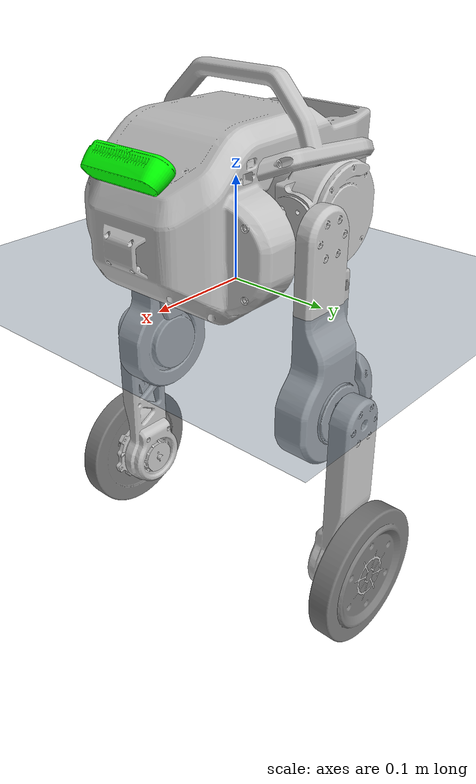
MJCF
<mujoco model="Pineapple scene">
  <include file="pineapple_v1.xml"/>

  <statistic center="0 0 0.1" extent="0.8"/>

  <visual>
    <headlight diffuse="0.6 0.6 0.6" ambient="0.3 0.3 0.3" specular="0 0 0"/>
    <rgba haze="0.15 0.25 0.35 1"/>
    <global azimuth="-130" elevation="-20"/>
  </visual>

  <asset>
    <texture type="skybox" builtin="gradient" rgb1="0.3 0.5 0.7" rgb2="0 0 0" width="512" height="3072"/>
    <texture type="2d" name="groundplane" builtin="checker" mark="edge" rgb1="0.2 0.3 0.4" rgb2="0.1 0.2 0.3"
      markrgb="0.8 0.8 0.8" width="300" height="300"/>
    <material name="groundplane" texture="groundplane" texuniform="true" texrepeat="5 5" reflectance="0.2"/>
  </asset>

  <worldbody>
    <light pos="0 0 1.5" dir="0 0 -1" directional="true"/>
    <geom name="floor" size="0 0 0.05" type="plane" material="groundplane"/>

  </worldbody>
</mujoco>

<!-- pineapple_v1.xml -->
<mujoco model="pineapple_v1">
  <compiler angle="radian" meshdir="../meshes/"/>
  <option cone="elliptic" impratio="100"/>
  <option gravity='0 0 -9.81' iterations='50' solver='Newton' timestep='0.002'/>

  <default>
      <default class="pineapple">
          <geom friction="0.4" margin="0.001" condim="1"/>
          <joint damping="0.1" armature="0.01" frictionloss="0.2"/>
          <motor ctrlrange="-23.7 23.7"/>
          <default class="l_hip">
              <joint axis="-1 0 0" range="-0.52358 0.17444"/>
              <motor ctrlrange="-23.7 23.7"/>
          </default>
          <default class="r_hip">
              <joint axis="-1 0 0" range="-0.17444 0.52358"/>
              <motor ctrlrange="-23.7 23.7"/>
          </default>
          <default class="thigh">
              <joint axis="0 1 0" range="0 1.57"/>
              <motor ctrlrange="-23.7 23.7"/>
          </default>
          <default class="calf">
              <joint axis="0 1 0" range="-3.141 0"/>
              <motor ctrlrange="-33.5 33.5"/>
          </default>
          <default class="visual">
              <geom type="mesh" contype="0" conaffinity="0" group="2"/>
          </default>
          <default class="collision">
              <geom group="3" type="mesh" rgba="1 0 0 0.3" />
              <default class="wheel">
              <geom size="0.022" priority="1" condim="6"
                  friction="0.8 0.02 0.01"/>
              </default>
          </default>
      </default>
  </default>

  <asset>
    <mesh name="base_link" file="base_link.STL"/>
    <mesh name="base_link_collision" file="base_link_collision.STL"/>
    <mesh name="cam" file="cam.STL"/>
    <mesh name="L_hip" file="L_hip.STL"/>
    <mesh name="L_thigh" file="L_thigh.STL"/>
    <mesh name="L_thigh_collision" file="L_thigh_collision.STL"/>
    <mesh name="L_calf" file="L_calf.STL"/>
    <mesh name="L_calf_collision" file="L_calf_collision.STL"/>
    <mesh name="L_wheel" file="L_wheel.STL"/>
    <mesh name="R_hip" file="R_hip.STL"/>
    <mesh name="R_thigh" file="R_thigh.STL"/>
    <mesh name="R_thigh_collision" file="R_thigh_collision.STL"/>
    <mesh name="R_calf" file="R_calf.STL"/>
    <mesh name="R_calf_collision" file="R_calf_collision.STL"/>
    <mesh name="R_wheel" file="R_wheel.STL"/>
  </asset>

  <worldbody>
  <body name="base_link" pos="0 0 0" childclass="pineapple">
      <inertial pos="0.01340244 0.00045247 0.07248523" quat="1 0 0 0" mass="3.63" diaginertia="0.01979765 0.01183585 0.00863159" />
      <freejoint />
      <site name="imu" pos="0 0 0" />
      <geom type="mesh" contype="0" conaffinity="0" group="1" density="0" rgba="0.752941 0.752941 0.752941 1" mesh="base_link"/>
      <geom type="mesh" rgba="0.752941 0.752941 0.752941 1" mesh="base_link_collision" class='collision'/>
      <body name="cam" pos="0 0 0">
        <inertial pos="0 0 0" quat="1 0 0 0" mass="0.3" diaginertia="0.00002720 0.00018085 0.00018280" />
        <geom pos="0.136663 0 0.12554" quat="0.939693 0 0.34202 0" type="mesh" contype="0" conaffinity="0" group="1" density="0" rgba="0 1 0 1" mesh="cam"/>
      </body>
      <body name="L_hip" pos="0 0.061689 0.066">
        <inertial pos="0.00254635 -0.00198794 0.0005042" quat="0.50972 0.477764 0.507199 0.504654" mass="0.585" diaginertia="0.000767839 0.000505514 0.000454476"/>
        <joint name="L_hip_joint" class="l_hip"/>
        <geom type="mesh" contype="0" conaffinity="0" group="1" density="0" rgba="0.752941 0.752941 0.752941 1" mesh="L_hip"/>
        <body name="L_thigh" pos="0 0.027596 0">
          <inertial pos="-0.00110375 0.00813971 -0.133992" quat="0.721556 0.0204552 -0.0151932 0.691887" mass="0.98" diaginertia="0.00423209 0.00379561 0.000652983"/>
          <joint name="L_thigh_joint" class="thigh"/>
          <geom type="mesh" contype="0" conaffinity="0" group="1" density="0" rgba="0.752941 0.752941 0.752941 1" mesh="L_thigh"/>
          <geom type="mesh" rgba="0.752941 0.752941 0.752941 1" mesh="L_thigh_collision" class='collision'/>
          <body name="L_calf" pos="0 0.04135 -0.165">
            <inertial pos="-0.00026693 0.00971427 -0.170353" quat="0.597929 0.353944 0.643991 0.320126" mass="0.567" diaginertia="0.000340296 0.000275824 0.00024003"/>
            <joint name="L_calf_joint" class="calf"/>
            <geom type="mesh" contype="0" conaffinity="0" group="1" density="0" rgba="0.752941 0.752941 0.752941 1" mesh="L_calf"/>
            <geom type="mesh" rgba="0.752941 0.752941 0.752941 1" mesh="L_calf_collision" class='collision'/>
            <body name="L_wheel" pos="0 0.024414 -0.165">
              <inertial pos="0 0.00106336 0" quat="0.642722 0.294611 0.294822 0.642801" mass="0.3" diaginertia="0.0009102 0.000467826 0.000467624"/>
              <joint name="L_wheel_joint" pos="0 0 0" axis="0 1 0"/>
              <geom type="mesh" contype="0" conaffinity="0" group="1" density="0" rgba="0.470588 0.470588 0.470588 1" mesh="L_wheel"/>
              <geom size="0.075 0.0115" quat="0.707105 0.707108 0 0" type="cylinder" rgba="0.470588 0.470588 0.470588 1" class='collision'/>
            </body>
          </body>
        </body>
      </body>
      <body name="R_hip" pos="0 -0.061689 0.066">
        <inertial pos="0.00254635 0.00198794 0.0005042" quat="0.504654 0.507199 0.477764 0.50972" mass="0.585" diaginertia="0.000767839 0.000505514 0.000454476"/>
        <joint name="R_hip_joint" class="r_hip"/>
        <geom type="mesh" contype="0" conaffinity="0" group="1" density="0" rgba="0.752941 0.752941 0.752941 1" mesh="R_hip"/>
        <body name="R_thigh" pos="0 -0.027596 0">
          <inertial pos="-0.00110375 -0.00813971 -0.133992" quat="0.69275 -0.0171104 0.0188496 0.720729" mass="0.98" diaginertia="0.00423904 0.00379814 0.000656173"/>
          <joint name="R_thigh_joint" class="thigh"/>
          <geom type="mesh" contype="0" conaffinity="0" group="1" density="0" rgba="0.752941 0.752941 0.752941 1" mesh="R_thigh"/>
          <geom type="mesh" rgba="0.752941 0.752941 0.752941 1" mesh="R_thigh_collision" class='collision'/>
          <body name="R_calf" pos="0 -0.04135 -0.165">
            <inertial pos="-0.00026693 -0.00971427 -0.170353" quat="0.320126 0.643991 0.353944 0.597929" mass="0.567" diaginertia="0.000340296 0.000275824 0.00024003"/>
            <joint name="R_calf_joint" class="calf"/>
            <geom type="mesh" contype="0" conaffinity="0" group="1" density="0" rgba="0.752941 0.752941 0.752941 1" mesh="R_calf"/>
            <geom type="mesh" rgba="0.752941 0.752941 0.752941 1" mesh="R_calf_collision" class='collision'/>
            <body name="R_wheel" pos="0 -0.024414 -0.165">
              <inertial pos="0 -0.00106336 0" quat="0.642722 0.294611 0.294822 0.642801" mass="0.3" diaginertia="0.0009102 0.000467826 0.000467624"/>
              <joint name="R_wheel_joint" pos="0 0 0" axis="0 1 0"/>
              <geom type="mesh" contype="0" conaffinity="0" group="1" density="0" rgba="0.470588 0.470588 0.470588 1" mesh="R_wheel"/>
              <geom size="0.075 0.0115" quat="0.707105 -0.707108 0 0" type="cylinder" rgba="0.470588 0.470588 0.470588 1" class='collision'/>
            </body>
          </body>
        </body>
      </body>
    </body>
  </worldbody>

  <actuator>
      <motor class="l_hip" name="L_hip" joint="L_hip_joint" />
      <motor class="thigh" name="L_thigh" joint="L_thigh_joint" />
      <motor class="calf" name="L_calf" joint="L_calf_joint" />
      <motor ctrlrange="-3.69 3.69" name="L_wheel" joint="L_wheel_joint" />

      <motor class="r_hip" name="R_hip" joint="R_hip_joint" />
      <motor class="thigh" name="R_thigh" joint="R_thigh_joint" />
      <motor class="calf" name="R_calf" joint="R_calf_joint" />
      <motor ctrlrange="-3.69 3.69" name="R_wheel" joint="R_wheel_joint" />

  </actuator>

  <sensor>

      <jointpos name="L_hip_pos" joint="L_hip_joint" />
      <jointpos name="L_thigh_pos" joint="L_thigh_joint" />
      <jointpos name="L_calf_pos" joint="L_calf_joint" />
      <jointpos name="L_wheel_pos" joint="L_wheel_joint" />

      <jointpos name="R_hip_pos" joint="R_hip_joint" />
      <jointpos name="R_thigh_pos" joint="R_thigh_joint" />
      <jointpos name="R_calf_pos" joint="R_calf_joint" />
      <jointpos name="R_wheel_pos" joint="R_wheel_joint" />

      <jointvel name="L_hip_vel" joint="L_hip_joint" />
      <jointvel name="L_thigh_vel" joint="L_thigh_joint" />
      <jointvel name="L_calf_vel" joint="L_calf_joint" />
      <jointvel name="L_wheel_vel" joint="L_wheel_joint" noise="0.0"/>

      <jointvel name="R_hip_vel" joint="R_hip_joint" />
      <jointvel name="R_thigh_vel" joint="R_thigh_joint" />
      <jointvel name="R_calf_vel" joint="R_calf_joint" />
      <jointvel name="R_wheel_vel" joint="R_wheel_joint" noise="0.0"/>

      <jointactuatorfrc name="L_hip_torque" joint="L_hip_joint" noise="0.01" />
      <jointactuatorfrc name="L_thigh_torque" joint="L_thigh_joint" noise="0.01" />
      <jointactuatorfrc name="L_calf_torque" joint="L_calf_joint" noise="0.01" />
      <jointactuatorfrc name="L_wheel_torque" joint="L_wheel_joint" />

      <jointactuatorfrc name="R_hip_torque" joint="R_hip_joint" noise="0.01" />
      <jointactuatorfrc name="R_thigh_torque" joint="R_thigh_joint" noise="0.01" />
      <jointactuatorfrc name="R_calf_torque" joint="R_calf_joint" noise="0.01" />
      <jointactuatorfrc name="R_wheel_torque" joint="R_wheel_joint" />

      <framequat name="imu_quat" objtype="site" objname="imu" noise="0.0"/>
      <gyro name="imu_gyro" site="imu" noise="0.0"/>
      <accelerometer name="imu_acc" site="imu" />

      <framepos name="frame_pos" objtype="site" objname="imu" />
      <framelinvel name="frame_lin_vel" objtype="site" objname="imu" />
      <frameangvel name="frame_ang_vel" objtype="site" objname="imu" />
  </sensor>
</mujoco>
